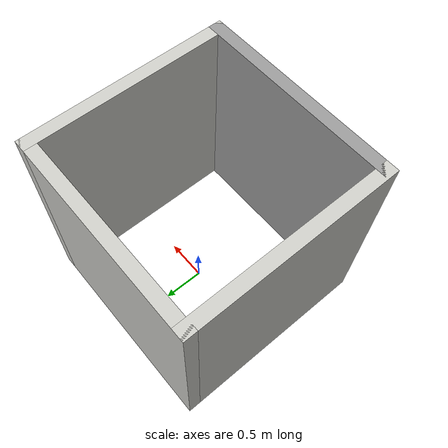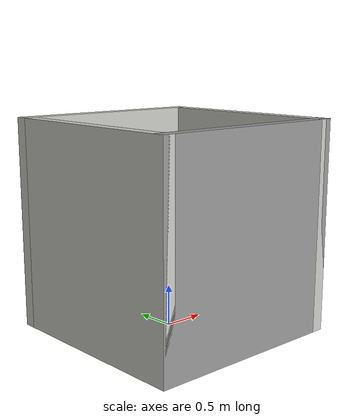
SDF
<?xml version='1.0'?>
<sdf version='1.7'>
  <model name='kalman_laboratorio'>
    <pose>-0.011793 -0.081535 0 0 -0 0</pose>
    <link name='Wall_11'>
      <collision name='Wall_11_Collision'>
        <geometry>
          <box>
            <size>2.5 0.15 2.5</size>
          </box>
        </geometry>
        <pose>0 0 1.25 0 -0 0</pose>
      </collision>
      <visual name='Wall_11_Visual'>
        <pose>0 0 1.25 0 -0 0</pose>
        <geometry>
          <box>
            <size>2.5 0.15 2.5</size>
          </box>
        </geometry>
        <material>
          <script>
            <uri>file://media/materials/scripts/gazebo.material</uri>
            <name>Gazebo/Grey</name>
          </script>
          <ambient>1 1 1 1</ambient>
        </material>
        <meta>
          <layer>0</layer>
        </meta>
      </visual>
      <pose>-0 -1.175 0 0 -0 0</pose>
    </link>
    <link name='Wall_13'>
      <collision name='Wall_13_Collision'>
        <geometry>
          <box>
            <size>2.5 0.15 2.5</size>
          </box>
        </geometry>
        <pose>0 0 1.25 0 -0 0</pose>
      </collision>
      <visual name='Wall_13_Visual'>
        <pose>0 0 1.25 0 -0 0</pose>
        <geometry>
          <box>
            <size>2.5 0.15 2.5</size>
          </box>
        </geometry>
        <material>
          <script>
            <uri>file://media/materials/scripts/gazebo.material</uri>
            <name>Gazebo/CeilingTiled</name>
          </script>
          <ambient>1 1 1 1</ambient>
        </material>
        <meta>
          <layer>0</layer>
        </meta>
      </visual>
      <pose>1.175 0 0 0 -0 1.5708</pose>
    </link>
    <link name='Wall_14'>
      <collision name='Wall_14_Collision'>
        <geometry>
          <box>
            <size>2.5 0.15 2.5</size>
          </box>
        </geometry>
        <pose>0 0 1.25 0 -0 0</pose>
      </collision>
      <visual name='Wall_14_Visual'>
        <pose>0 0 1.25 0 -0 0</pose>
        <geometry>
          <box>
            <size>2.5 0.15 2.5</size>
          </box>
        </geometry>
        <material>
          <script>
            <uri>file://media/materials/scripts/gazebo.material</uri>
            <name>Gazebo/CeilingTiled</name>
          </script>
          <ambient>1 1 1 1</ambient>
        </material>
        <meta>
          <layer>0</layer>
        </meta>
      </visual>
      <pose>-0 1.175 0 0 -0 3.14159</pose>
    </link>
    <link name='Wall_15'>
      <collision name='Wall_15_Collision'>
        <geometry>
          <box>
            <size>2.5 0.15 2.5</size>
          </box>
        </geometry>
        <pose>0 0 1.25 0 -0 0</pose>
      </collision>
      <visual name='Wall_15_Visual'>
        <pose>0 0 1.25 0 -0 0</pose>
        <geometry>
          <box>
            <size>2.5 0.15 2.5</size>
          </box>
        </geometry>
        <material>
          <script>
            <uri>file://media/materials/scripts/gazebo.material</uri>
            <name>Gazebo/CeilingTiled</name>
          </script>
          <ambient>1 1 1 1</ambient>
        </material>
        <meta>
          <layer>0</layer>
        </meta>
      </visual>
      <pose>-1.175 0 0 0 -0 -1.5708</pose>
    </link>
    <static>1</static>
  </model>
</sdf>
